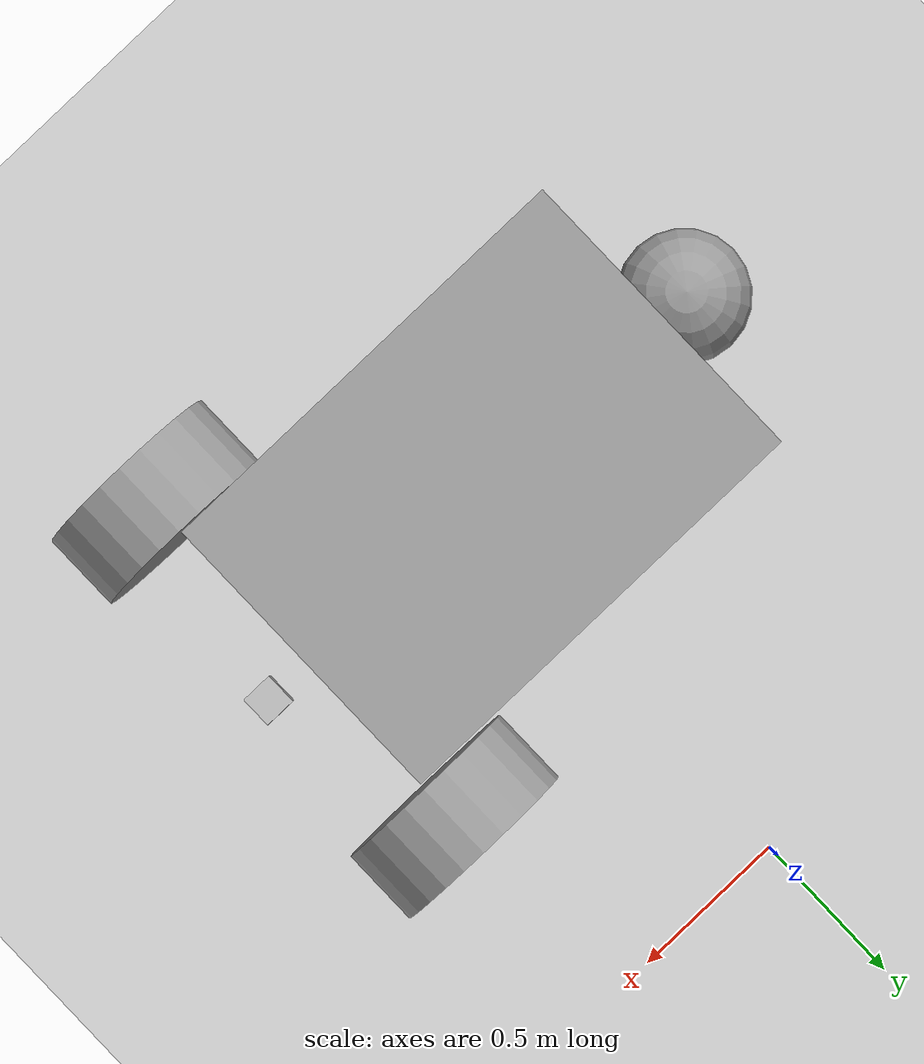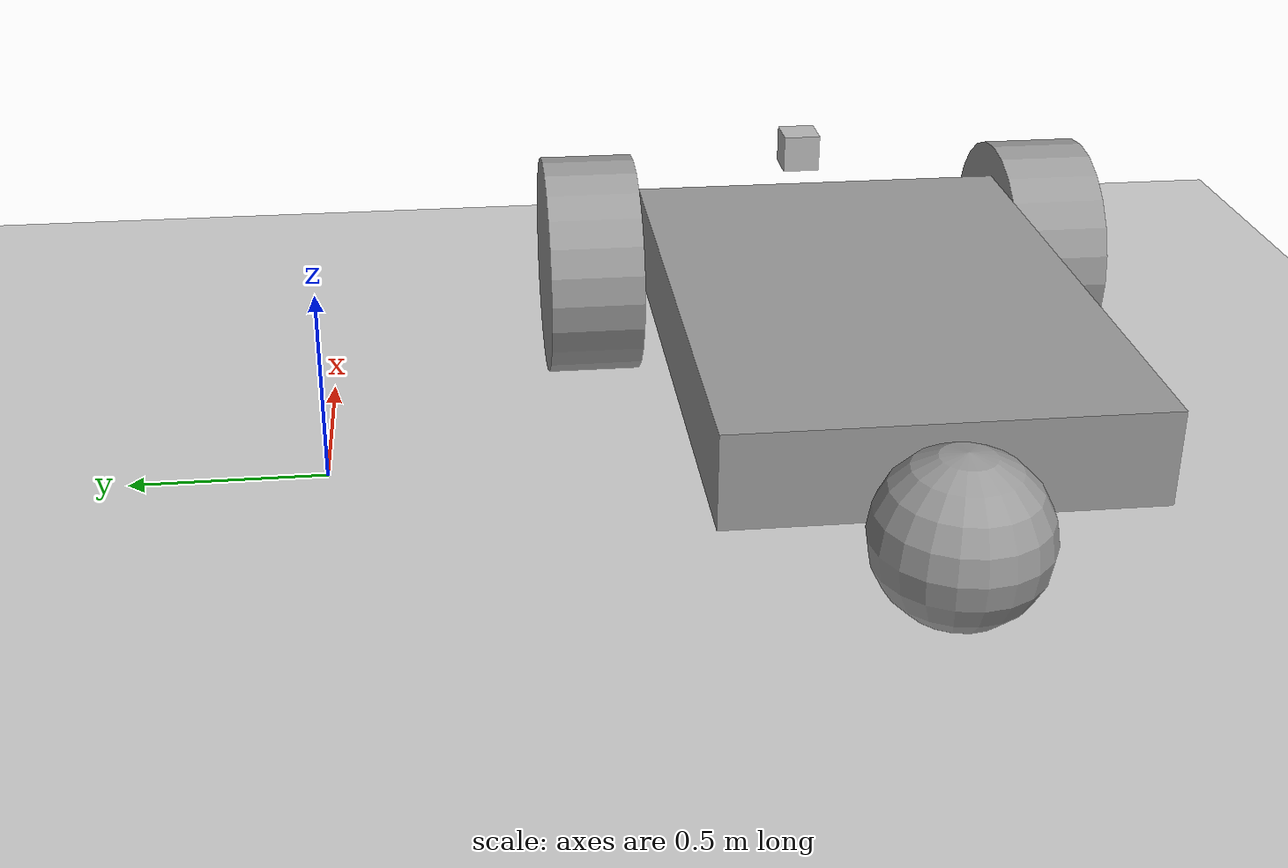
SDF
<sdf version="1.7">
 <world name="default">
  <light name="sun" type="directional">
   <pose>0 0 10 0 -0 0</pose>
   <diffuse>0.8 0.8 0.8 1</diffuse>
   <specular>0.2 0.2 0.2 1</specular>
   <attenuation>
    <range>1000</range>
    <constant>0.9</constant>
    <linear>0.01</linear>
    <quadratic>0.001</quadratic>
   </attenuation>
   <direction>-0.5 0.1 -0.9</direction>
   <spot><inner_angle>0</inner_angle><outer_angle>0</outer_angle><falloff>0</falloff></spot>
  </light>
  <model name="ground_plane">
   <static>1</static>
   <link name="link">
    <collision name="collision">
     <geometry><plane><normal>0 0 1</normal><size>100 100</size></plane></geometry>
     <surface>
      <contact><collide_bitmask>65535</collide_bitmask></contact>
      <friction><ode><mu>100</mu><mu2>50</mu2></ode></friction>
     </surface>
    </collision>
    <visual name="visual">
     <cast_shadows>0</cast_shadows>
     <geometry><plane><normal>0 0 1</normal><size>100 100</size></plane></geometry>
     <material>
      <script><uri>file://media/materials/scripts/gazebo.material</uri><name>Gazebo/Grey</name></script>
     </material>
    </visual>
   </link>
  </model>
  <gravity>0 0 -9.8</gravity>
  <magnetic_field>6e-06 2.3e-05 -4.2e-05</magnetic_field>
  <atmosphere type="adiabatic"/>
  <physics type="ode">
   <max_step_size>0.001</max_step_size>
   <real_time_factor>1</real_time_factor>
   <real_time_update_rate>1000</real_time_update_rate>
  </physics>
  <scene><ambient>0.4 0.4 0.4 1</ambient><background>0.7 0.7 0.7 1</background><shadows>1</shadows></scene>
  <audio><device>default</device></audio>
  <spherical_coordinates>
   <surface_model>EARTH_WGS84</surface_model>
   <latitude_deg>0</latitude_deg>
   <longitude_deg>0</longitude_deg>
   <elevation>0</elevation>
   <heading_deg>0</heading_deg>
  </spherical_coordinates>
  <model name="test_bot">
   <link name="link_3">
    <inertial>
     <mass>0.329061</mass>
     <inertia>
      <ixx>0.0288713</ixx>
      <ixy>0</ixy>
      <ixz>0</ixz>
      <iyy>0.057671</iyy>
      <iyz>0</iyz>
      <izz>0.0836432</izz>
     </inertia>
    </inertial>
    <pose>0 0 0.4 0 -0 0</pose>
    <visual name="visual">
     <geometry><box><size>1.43187 1 0.229914</size></box></geometry>
     <material>
      <lighting>1</lighting>
      <script><uri>file://media/materials/scripts/gazebo.material</uri><name>Gazebo/Grey</name></script>
      <shader type="pixel"><normal_map>__default__</normal_map></shader>
      <ambient>0.3 0.3 0.3 1</ambient>
      <diffuse>0.7 0.7 0.7 1</diffuse>
      <specular>0.01 0.01 0.01 1</specular>
      <emissive>0 0 0 1</emissive>
     </material>
    </visual>
    <collision name="collision">
     <geometry><box><size>1.43187 1 0.229914</size></box></geometry>
     <surface>
      <friction>
       <ode><mu>1</mu><mu2>1</mu2><fdir1>0 0 0</fdir1><slip1>0</slip1><slip2>0</slip2></ode>
       <torsional>
        <coefficient>1</coefficient>
        <patch_radius>0</patch_radius>
        <surface_radius>0</surface_radius>
        <use_patch_radius>1</use_patch_radius>
        <ode><slip>0</slip></ode>
       </torsional>
      </friction>
      <bounce><restitution_coefficient>0</restitution_coefficient><threshold>1e+06</threshold></bounce>
      <contact>
       <collide_without_contact>0</collide_without_contact>
       <collide_without_contact_bitmask>1</collide_without_contact_bitmask>
       <collide_bitmask>1</collide_bitmask>
       <ode>
        <soft_cfm>0</soft_cfm>
        <soft_erp>0.2</soft_erp>
        <kp>1e+13</kp>
        <kd>1</kd>
        <max_vel>0.01</max_vel>
        <min_depth>0</min_depth>
       </ode>
       <bullet>
        <split_impulse>1</split_impulse>
        <split_impulse_penetration_threshold>-0.01</split_impulse_penetration_threshold>
        <soft_cfm>0</soft_cfm>
        <soft_erp>0.2</soft_erp>
        <kp>1e+13</kp>
        <kd>1</kd>
       </bullet>
      </contact>
     </surface>
    </collision>
   </link>
   <link name="link_4">
    <inertial>
     <mass>1</mass>
     <inertia><ixx>0.145833</ixx><ixy>0</ixy><ixz>0</ixz><iyy>0.145833</iyy><iyz>0</iyz><izz>0.125</izz></inertia>
    </inertial>
    <pose>0.716139 0.640239 0.3 1.57 -0 0</pose>
    <visual name="visual">
     <geometry><cylinder><radius>0.3</radius><length>0.25</length></cylinder></geometry>
     <material>
      <lighting>1</lighting>
      <script><uri>file://media/materials/scripts/gazebo.material</uri><name>Gazebo/Grey</name></script>
      <shader type="pixel"><normal_map>__default__</normal_map></shader>
      <ambient>0.3 0.3 0.3 1</ambient>
      <diffuse>0.7 0.7 0.7 1</diffuse>
      <specular>0.01 0.01 0.01 1</specular>
      <emissive>0 0 0 1</emissive>
     </material>
    </visual>
    <collision name="collision">
     <geometry><cylinder><radius>0.3</radius><length>0.25</length></cylinder></geometry>
     <surface>
      <friction>
       <ode><mu>1</mu><mu2>1</mu2><fdir1>0 0 0</fdir1><slip1>0</slip1><slip2>0</slip2></ode>
       <torsional>
        <coefficient>1</coefficient>
        <patch_radius>0</patch_radius>
        <surface_radius>0</surface_radius>
        <use_patch_radius>1</use_patch_radius>
        <ode><slip>0</slip></ode>
       </torsional>
      </friction>
      <bounce><restitution_coefficient>0</restitution_coefficient><threshold>1e+06</threshold></bounce>
      <contact>
       <collide_without_contact>0</collide_without_contact>
       <collide_without_contact_bitmask>1</collide_without_contact_bitmask>
       <collide_bitmask>1</collide_bitmask>
       <ode>
        <soft_cfm>0</soft_cfm>
        <soft_erp>0.2</soft_erp>
        <kp>1e+13</kp>
        <kd>1</kd>
        <max_vel>0.01</max_vel>
        <min_depth>0</min_depth>
       </ode>
       <bullet>
        <split_impulse>1</split_impulse>
        <split_impulse_penetration_threshold>-0.01</split_impulse_penetration_threshold>
        <soft_cfm>0</soft_cfm>
        <soft_erp>0.2</soft_erp>
        <kp>1e+13</kp>
        <kd>1</kd>
       </bullet>
      </contact>
     </surface>
    </collision>
   </link>
   <link name="link_4_clone">
    <inertial>
     <mass>1</mass>
     <inertia><ixx>0.145833</ixx><ixy>0</ixy><ixz>0</ixz><iyy>0.145833</iyy><iyz>0</iyz><izz>0.125</izz></inertia>
    </inertial>
    <pose>0.716139 -0.625239 0.3 1.57 -0 0</pose>
    <visual name="visual">
     <geometry><cylinder><radius>0.3</radius><length>0.25</length></cylinder></geometry>
     <material>
      <lighting>1</lighting>
      <script><uri>file://media/materials/scripts/gazebo.material</uri><name>Gazebo/Grey</name></script>
      <shader type="pixel"><normal_map>__default__</normal_map></shader>
      <ambient>0.3 0.3 0.3 1</ambient>
      <diffuse>0.7 0.7 0.7 1</diffuse>
      <specular>0.01 0.01 0.01 1</specular>
      <emissive>0 0 0 1</emissive>
     </material>
    </visual>
    <collision name="collision">
     <geometry><cylinder><radius>0.3</radius><length>0.25</length></cylinder></geometry>
     <surface>
      <friction>
       <ode><mu>1</mu><mu2>1</mu2><fdir1>0 0 0</fdir1><slip1>0</slip1><slip2>0</slip2></ode>
       <torsional>
        <coefficient>1</coefficient>
        <patch_radius>0</patch_radius>
        <surface_radius>0</surface_radius>
        <use_patch_radius>1</use_patch_radius>
        <ode><slip>0</slip></ode>
       </torsional>
      </friction>
      <bounce><restitution_coefficient>0</restitution_coefficient><threshold>1e+06</threshold></bounce>
      <contact>
       <collide_without_contact>0</collide_without_contact>
       <collide_without_contact_bitmask>1</collide_without_contact_bitmask>
       <collide_bitmask>1</collide_bitmask>
       <ode>
        <soft_cfm>0</soft_cfm>
        <soft_erp>0.2</soft_erp>
        <kp>1e+13</kp>
        <kd>1</kd>
        <max_vel>0.01</max_vel>
        <min_depth>0</min_depth>
       </ode>
       <bullet>
        <split_impulse>1</split_impulse>
        <split_impulse_penetration_threshold>-0.01</split_impulse_penetration_threshold>
        <soft_cfm>0</soft_cfm>
        <soft_erp>0.2</soft_erp>
        <kp>1e+13</kp>
        <kd>1</kd>
       </bullet>
      </contact>
     </surface>
    </collision>
   </link>
   <link name="link_5">
    <inertial>
     <mass>1</mass>
     <inertia><ixx>0.1</ixx><ixy>0</ixy><ixz>0</ixz><iyy>0.1</iyy><iyz>0</iyz><izz>0.1</izz></inertia>
    </inertial>
    <pose>-0.816139 0 0.3 0 -0 0</pose>
    <visual name="visual">
     <geometry><sphere><radius>0.2</radius></sphere></geometry>
     <material>
      <lighting>1</lighting>
      <script><uri>file://media/materials/scripts/gazebo.material</uri><name>Gazebo/Grey</name></script>
      <shader type="pixel"><normal_map>__default__</normal_map></shader>
      <ambient>0.3 0.3 0.3 1</ambient>
      <diffuse>0.7 0.7 0.7 1</diffuse>
      <specular>0.01 0.01 0.01 1</specular>
      <emissive>0 0 0 1</emissive>
     </material>
    </visual>
    <collision name="collision">
     <geometry><sphere><radius>0.2</radius></sphere></geometry>
     <surface>
      <friction>
       <ode><mu>1</mu><mu2>1</mu2><fdir1>0 0 0</fdir1><slip1>0</slip1><slip2>0</slip2></ode>
       <torsional>
        <coefficient>1</coefficient>
        <patch_radius>0</patch_radius>
        <surface_radius>0</surface_radius>
        <use_patch_radius>1</use_patch_radius>
        <ode><slip>0</slip></ode>
       </torsional>
      </friction>
      <bounce><restitution_coefficient>0</restitution_coefficient><threshold>1e+06</threshold></bounce>
      <contact>
       <collide_without_contact>0</collide_without_contact>
       <collide_without_contact_bitmask>1</collide_without_contact_bitmask>
       <collide_bitmask>1</collide_bitmask>
       <ode>
        <soft_cfm>0</soft_cfm>
        <soft_erp>0.2</soft_erp>
        <kp>1e+13</kp>
        <kd>1</kd>
        <max_vel>0.01</max_vel>
        <min_depth>0</min_depth>
       </ode>
       <bullet>
        <split_impulse>1</split_impulse>
        <split_impulse_penetration_threshold>-0.01</split_impulse_penetration_threshold>
        <soft_cfm>0</soft_cfm>
        <soft_erp>0.2</soft_erp>
        <kp>1e+13</kp>
        <kd>1</kd>
       </bullet>
      </contact>
     </surface>
    </collision>
   </link>
   <model name="depth_camera">
    <link name="link">
     <pose>0 0 0.05 0 -0 0</pose>
     <inertial>
      <mass>0.1</mass>
      <inertia>
       <ixx>0.000166667</ixx>
       <iyy>0.000166667</iyy>
       <izz>0.000166667</izz>
       <ixy>0</ixy>
       <ixz>0</ixz>
       <iyz>0</iyz>
      </inertia>
     </inertial>
     <collision name="collision"><geometry><box><size>0.1 0.1 0.1</size></box></geometry></collision>
     <visual name="visual"><geometry><box><size>0.1 0.1 0.1</size></box></geometry></visual>
     <sensor name="camera" type="depth">
      <camera>
       <horizontal_fov>1.047</horizontal_fov>
       <image><width>320</width><height>240</height></image>
       <clip><near>0.1</near><far>100</far></clip>
      </camera>
      <always_on>1</always_on>
      <update_rate>30</update_rate>
      <visualize>1</visualize>
     </sensor>
    </link>
    <pose>0.863066 0.0251 0.515079 0 -0 0</pose>
   </model>
   <joint name="link_3_JOINT_0" type="revolute">
    <parent>link_3</parent>
    <child>link_4</child>
    <axis>
     <xyz>0 0 1</xyz>
     <limit>
      <lower>-1.79769e+308</lower>
      <upper>1.79769e+308</upper>
      <effort>-1</effort>
      <velocity>-1</velocity>
     </limit>
     <dynamics>
      <spring_reference>0</spring_reference>
      <spring_stiffness>0</spring_stiffness>
      <damping>0</damping>
      <friction>0</friction>
     </dynamics>
    </axis>
    <physics>
     <ode><limit><cfm>0</cfm><erp>0.2</erp></limit><suspension><cfm>0</cfm><erp>0.2</erp></suspension></ode>
    </physics>
   </joint>
   <joint name="link_3_JOINT_1" type="revolute">
    <parent>link_3</parent>
    <child>link_4_clone</child>
    <axis>
     <xyz>0 0 1</xyz>
     <limit>
      <lower>-1.79769e+308</lower>
      <upper>1.79769e+308</upper>
      <effort>-1</effort>
      <velocity>-1</velocity>
     </limit>
     <dynamics>
      <spring_reference>0</spring_reference>
      <spring_stiffness>0</spring_stiffness>
      <damping>0</damping>
      <friction>0</friction>
     </dynamics>
    </axis>
    <physics>
     <ode><limit><cfm>0</cfm><erp>0.2</erp></limit><suspension><cfm>0</cfm><erp>0.2</erp></suspension></ode>
    </physics>
   </joint>
   <joint name="link_3_JOINT_2" type="ball">
    <parent>link_3</parent>
    <child>link_5</child>
    <physics>
     <ode><limit><cfm>0</cfm><erp>0.2</erp></limit><suspension><cfm>0</cfm><erp>0.2</erp></suspension></ode>
    </physics>
   </joint>
   <joint name="link_3_JOINT_4" type="fixed">
    <parent>link_3</parent>
    <child>depth_camera::link</child>
    <pose>0 0 0 0 0 -0.07</pose>
    <physics>
     <ode><limit><cfm>0</cfm><erp>0.2</erp></limit><suspension><cfm>0</cfm><erp>0.2</erp></suspension></ode>
    </physics>
   </joint>
   <static>0</static>
   <plugin name="follower" filename="libFollowerPlugin.so"/>
   <pose>-0.109928 -1.3614 0 0 -0 0</pose>
  </model>
 </world>
</sdf>
